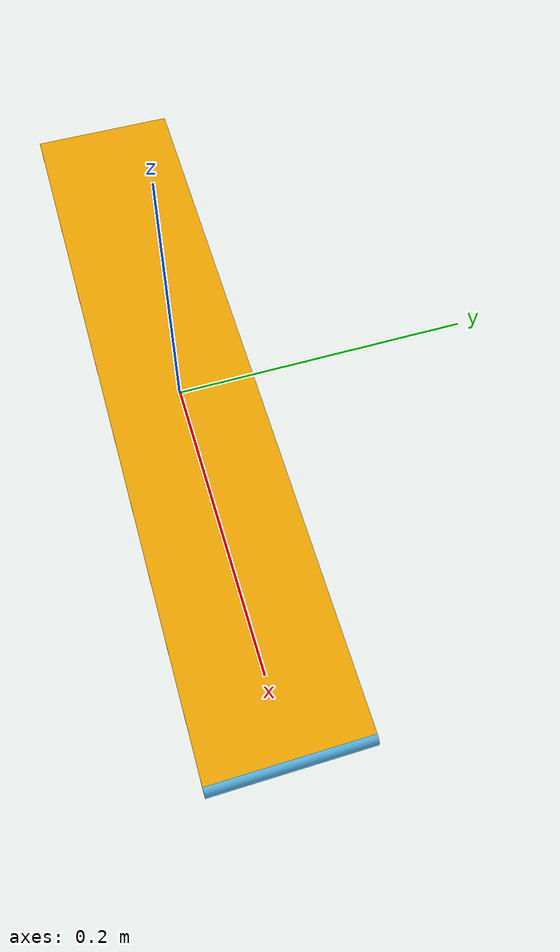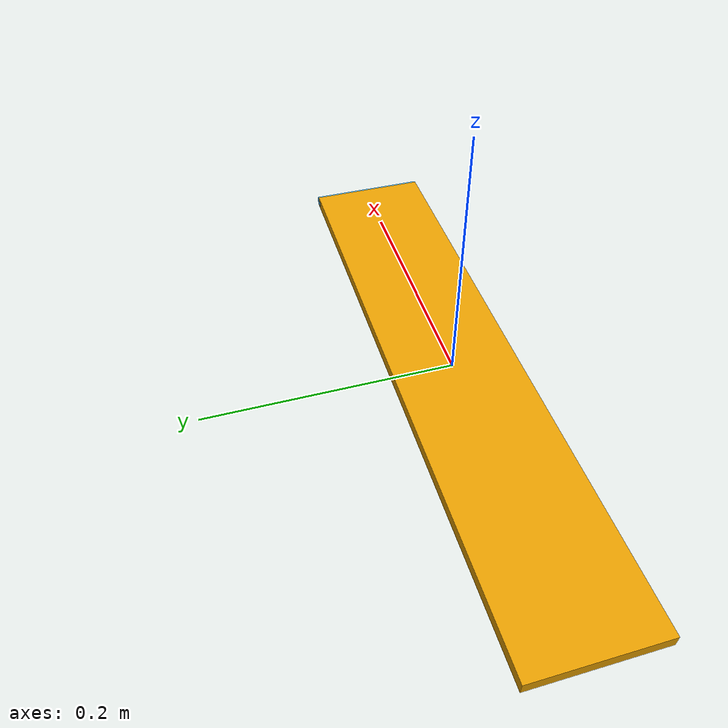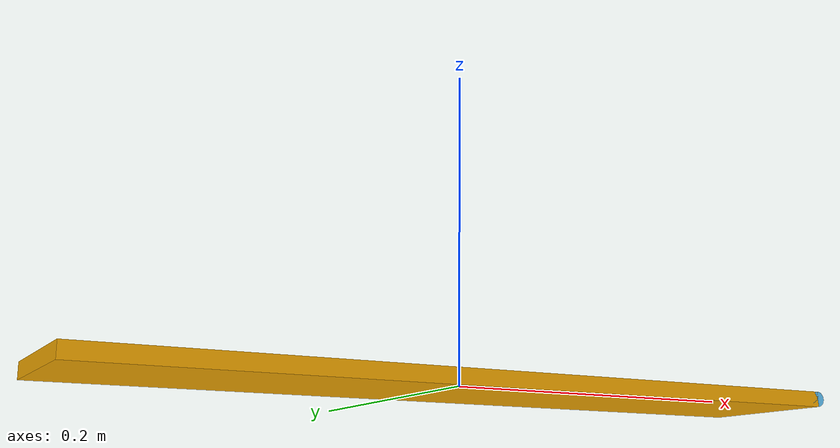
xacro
<?xml version="1.0"?>
<robot name="example_lugged_wheel" xmlns:xacro="http://www.ros.org/wiki/xacro">

    <!-- URDF file for general ROS systems such as ros_control, rviz, etc.           -->
    <!-- We define here;                                                             -->
    <!--     * a stabilizer plate as a parent body of wheels                         -->
    <!--     * a shaft to drive the wheels                                           -->
    <!--     * an axle and actuator for the sprocket                                 -->
    <!-- Other entities specialized for Gazebo are defined in *_gazebo.urdf.xacro .  -->

    <xacro:macro name="make_box_inertia" params="mass size_x size_y size_z">
        <inertial>
            <mass value="${mass}" />
            <inertia ixx="${mass * (size_y * size_y + size_z * size_z) / 12}" ixy="0" ixz="0" iyy="${mass * (size_z * size_z + size_x * size_x) / 12}" iyz="0" izz="${mass * (size_x * size_x + size_y * size_y) / 12}" />
        </inertial>
    </xacro:macro>

    <xacro:macro name="make_wheel_inertia" params="mass radius length">
        <inertial>
            <mass value="${mass}" />
            <!-- assuming axis of cylinder is y, not z -->
            <inertia ixx="${mass * (radius * radius / 4 + length * length / 12)}" ixy="0" ixz="0" iyy="${mass * radius * radius / 2}" iyz="0" izz="${mass * (radius * radius / 4 + length * length / 12)}" />
        </inertial>
    </xacro:macro>

    <!-- stabilizer plate -->

    <link name="stabilizer">
        <xacro:make_box_inertia mass="0.1" size_x="0.5" size_y="0.1" size_z="0.01" />

        <visual>
            <geometry>
                <box size="0.5 0.1 0.01" />
            </geometry>
        </visual>

        <collision>
            <geometry>
                <box size="0.5 0.1 0.01" />
            </geometry>
        </collision>
    </link>

    <!-- shaft driving the wheels -->

    <link name="shaft">
        <xacro:make_wheel_inertia mass="0.05" radius="0.005" length="0.1" />

        <visual>
            <origin xyz="0 0 0" rpy="${pi / 2} 0 0" />
            <geometry>
                <cylinder radius="0.005" length="0.1" />
            </geometry>
        </visual>

        <collision>
            <origin xyz="0 0 0" rpy="${pi / 2} 0 0" />
            <geometry>
                <cylinder radius="0.005" length="0.1" />
            </geometry>
        </collision>
    </link>

    <joint name="shaft_axle" type="continuous">
        <origin xyz="0.25 0 0" rpy="0 0 0" />
        <parent link="stabilizer" />
        <child link="shaft" />
        <axis xyz="0 1 0" />
    </joint>

    <transmission name="shaft_transmission">
        <type>transmission_interface/SimpleTransmission</type>
        <joint name="shaft_axle">
            <hardwareInterface>hardware_interface/VelocityJointInterface</hardwareInterface>
        </joint>
        <actuator name="shaft_actuator">
            <mechanicalReduction>1</mechanicalReduction>
        </actuator>
    </transmission>

</robot>
